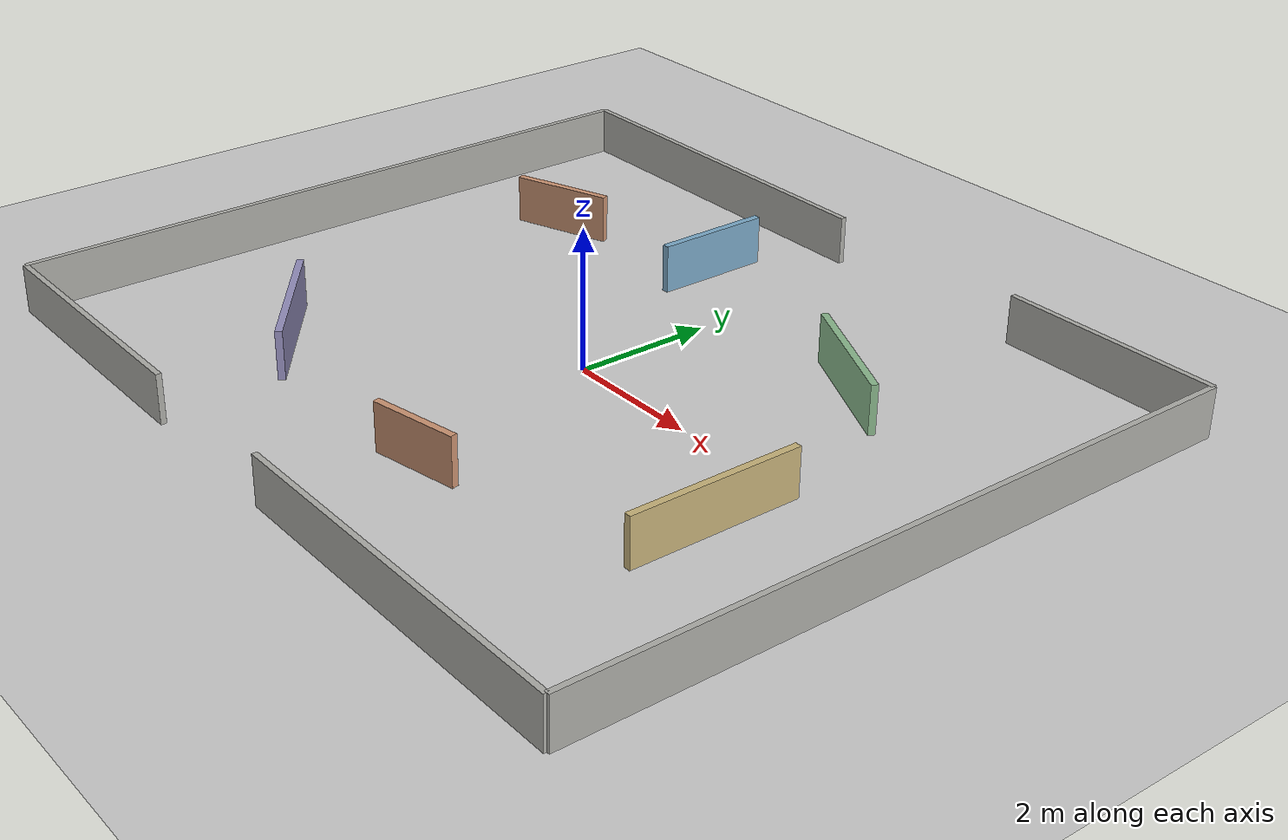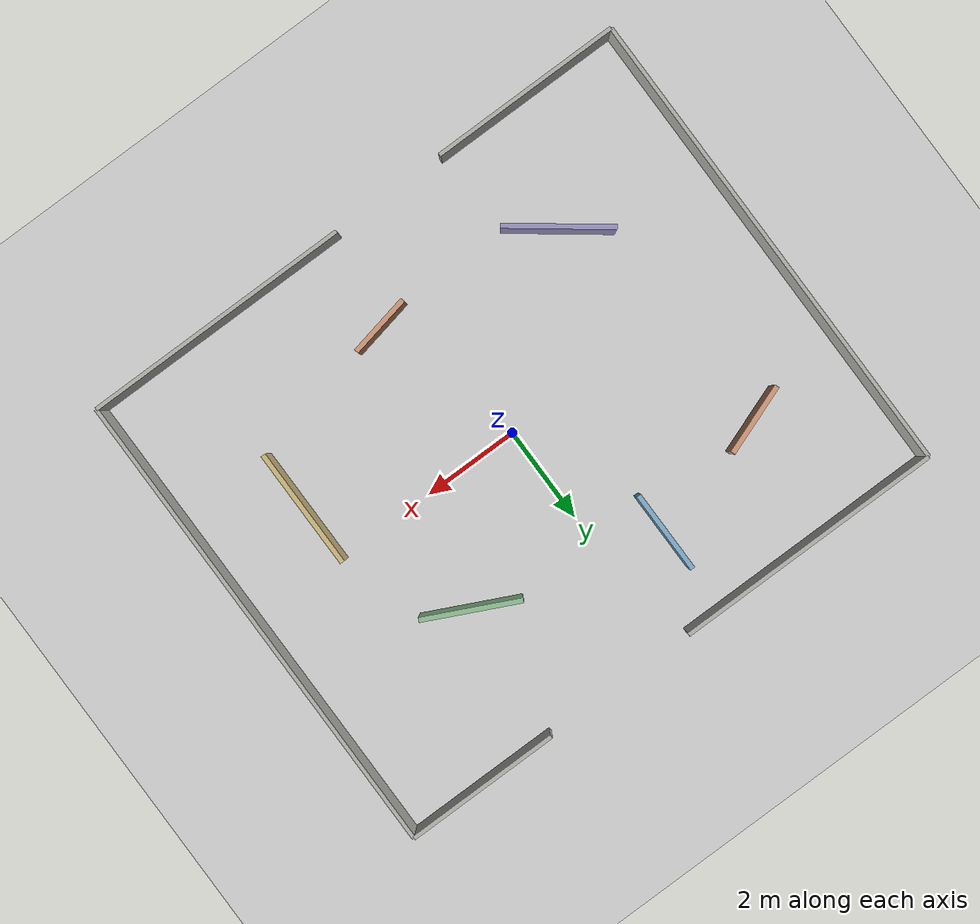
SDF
<?xml version="1.0" ?>
<sdf version="1.6">
  <world name="default">
    <gui>
      <camera name="user_camera">
        <pose>0 -12 14 0 0.95 1.5708</pose>
      </camera>
    </gui>

    <scene>
      <ambient>0.65 0.65 0.65 1</ambient>
      <background>0.55 0.58 0.62 1</background>
      <shadows>1</shadows>
      <grid>0</grid>
      <origin_visual>0</origin_visual>
    </scene>

    <include>
      <uri>model://ground_plane</uri>
    </include>

    <include>
      <uri>model://sun</uri>
    </include>

    <!-- Open arena with asymmetric 2D lidar landmarks. Gaps are kept wide for small TurtleBots. -->
    <model name="slam_landmark_walls">
      <static>true</static>

      <link name="north_wall_left">
        <pose>-3.2 5 0.35 0 0 0</pose>
        <collision name="collision"><geometry><box><size>5.6 0.08 0.7</size></box></geometry></collision>
        <visual name="visual"><geometry><box><size>5.6 0.08 0.7</size></box></geometry><material><ambient>0.68 0.68 0.66 1</ambient><diffuse>0.68 0.68 0.66 1</diffuse></material></visual>
      </link>
      <link name="north_wall_right">
        <pose>4.4 5 0.35 0 0 0</pose>
        <collision name="collision"><geometry><box><size>3.2 0.08 0.7</size></box></geometry></collision>
        <visual name="visual"><geometry><box><size>3.2 0.08 0.7</size></box></geometry><material><ambient>0.68 0.68 0.66 1</ambient><diffuse>0.68 0.68 0.66 1</diffuse></material></visual>
      </link>
      <link name="south_wall_left">
        <pose>-4 -5 0.35 0 0 0</pose>
        <collision name="collision"><geometry><box><size>4 0.08 0.7</size></box></geometry></collision>
        <visual name="visual"><geometry><box><size>4 0.08 0.7</size></box></geometry><material><ambient>0.68 0.68 0.66 1</ambient><diffuse>0.68 0.68 0.66 1</diffuse></material></visual>
      </link>
      <link name="south_wall_right">
        <pose>3.2 -5 0.35 0 0 0</pose>
        <collision name="collision"><geometry><box><size>5.6 0.08 0.7</size></box></geometry></collision>
        <visual name="visual"><geometry><box><size>5.6 0.08 0.7</size></box></geometry><material><ambient>0.68 0.68 0.66 1</ambient><diffuse>0.68 0.68 0.66 1</diffuse></material></visual>
      </link>
      <link name="east_wall">
        <pose>6 0 0.35 0 0 1.5708</pose>
        <collision name="collision"><geometry><box><size>10 0.08 0.7</size></box></geometry></collision>
        <visual name="visual"><geometry><box><size>10 0.08 0.7</size></box></geometry><material><ambient>0.68 0.68 0.66 1</ambient><diffuse>0.68 0.68 0.66 1</diffuse></material></visual>
      </link>
      <link name="west_wall">
        <pose>-6 0 0.35 0 0 1.5708</pose>
        <collision name="collision"><geometry><box><size>10 0.08 0.7</size></box></geometry></collision>
        <visual name="visual"><geometry><box><size>10 0.08 0.7</size></box></geometry><material><ambient>0.68 0.68 0.66 1</ambient><diffuse>0.68 0.68 0.66 1</diffuse></material></visual>
      </link>

      <link name="landmark_bar_a">
        <pose>-3.8 2.5 0.35 0 0 0.35</pose>
        <collision name="collision"><geometry><box><size>1.5 0.1 0.7</size></box></geometry></collision>
        <visual name="visual"><geometry><box><size>1.5 0.1 0.7</size></box></geometry><material><ambient>0.80 0.58 0.45 1</ambient><diffuse>0.80 0.58 0.45 1</diffuse></material></visual>
      </link>
      <link name="landmark_bar_b">
        <pose>-1.2 3.2 0.35 0 0 1.5708</pose>
        <collision name="collision"><geometry><box><size>1.7 0.1 0.7</size></box></geometry></collision>
        <visual name="visual"><geometry><box><size>1.7 0.1 0.7</size></box></geometry><material><ambient>0.48 0.66 0.78 1</ambient><diffuse>0.48 0.66 0.78 1</diffuse></material></visual>
      </link>
      <link name="landmark_bar_c">
        <pose>2.6 2.2 0.35 0 0 -0.45</pose>
        <collision name="collision"><geometry><box><size>2.0 0.1 0.7</size></box></geometry></collision>
        <visual name="visual"><geometry><box><size>2.0 0.1 0.7</size></box></geometry><material><ambient>0.54 0.72 0.55 1</ambient><diffuse>0.54 0.72 0.55 1</diffuse></material></visual>
      </link>
      <link name="landmark_bar_d">
        <pose>4 -1.2 0.35 0 0 1.5708</pose>
        <collision name="collision"><geometry><box><size>2.5 0.1 0.7</size></box></geometry></collision>
        <visual name="visual"><geometry><box><size>2.5 0.1 0.7</size></box></geometry><material><ambient>0.78 0.70 0.48 1</ambient><diffuse>0.78 0.70 0.48 1</diffuse></material></visual>
      </link>
      <link name="landmark_bar_e">
        <pose>-3 -2.6 0.35 0 0 -0.65</pose>
        <collision name="collision"><geometry><box><size>2.2 0.1 0.7</size></box></geometry></collision>
        <visual name="visual"><geometry><box><size>2.2 0.1 0.7</size></box></geometry><material><ambient>0.58 0.56 0.74 1</ambient><diffuse>0.58 0.56 0.74 1</diffuse></material></visual>
      </link>
      <link name="landmark_bar_f">
        <pose>0.8 -3.1 0.35 0 0 0.2</pose>
        <collision name="collision"><geometry><box><size>1.3 0.1 0.7</size></box></geometry></collision>
        <visual name="visual"><geometry><box><size>1.3 0.1 0.7</size></box></geometry><material><ambient>0.80 0.58 0.45 1</ambient><diffuse>0.80 0.58 0.45 1</diffuse></material></visual>
      </link>
    </model>
  </world>
</sdf>
